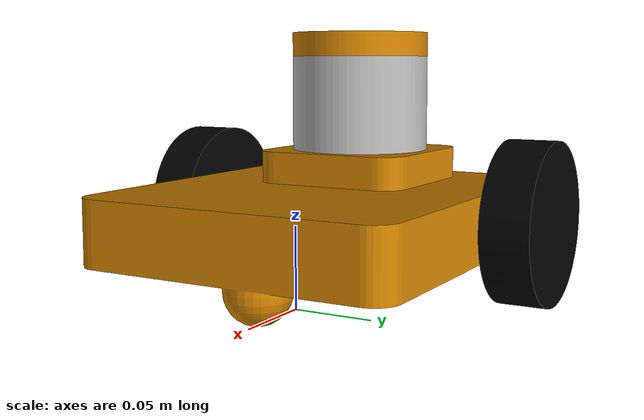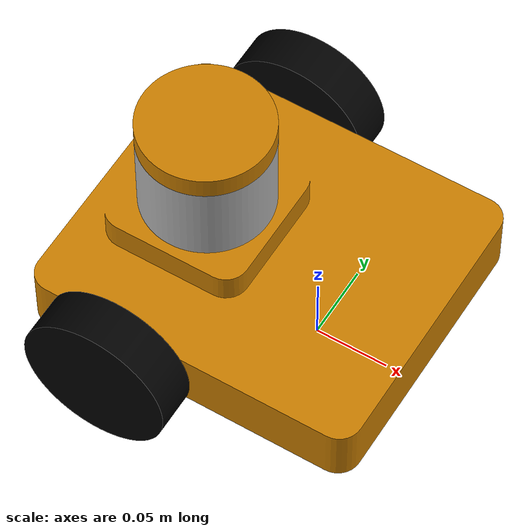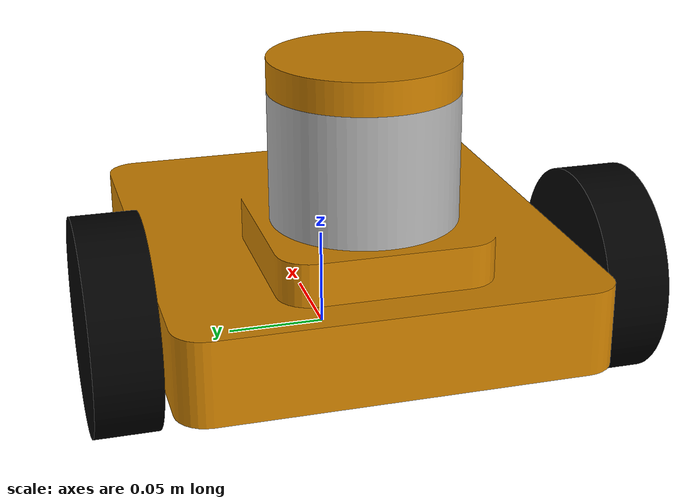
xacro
<?xml version="1.0" ?>
<robot name="simple_robot_v2" xmlns:xacro="http://www.ros.org/wiki/xacro">

<xacro:include filename="$(find simple_robot_v2_description)/urdf/materials.xacro" />
<xacro:include filename="$(find simple_robot_v2_description)/urdf/simple_robot_v2.trans" />
<xacro:include filename="$(find simple_robot_v2_description)/urdf/simple_robot_v2.gazebo" />

<link name="dummy">
</link>

<link name="base_link">
  <inertial>
    <origin xyz="-0.03822694000849843 -3.535369667010129e-17 0.05240112920272848" rpy="0 0 0"/>
    <mass value="2.1815300230136683"/>
    <inertia ixx="0.007073" iyy="0.009714" izz="0.015839" ixy="-0.0" iyz="-0.0" ixz="0.000339"/>
  </inertial>
  <visual>
    <origin xyz="0 0 0" rpy="0 0 0"/>
    <geometry>
      <mesh filename="file://$(find simple_robot_v2_description)/meshes/base_link.stl" scale="0.001 0.001 0.001"/>
    </geometry>
    <material name="yellow"/>
  </visual>
  <collision>
    <origin xyz="0 0 0" rpy="0 0 0"/>
    <geometry>
      <mesh filename="file://$(find simple_robot_v2_description)/meshes/base_link.stl" scale="0.001 0.001 0.001"/>
    </geometry>
  </collision>
</link>

<link name="left_wheel_1">
  <inertial>
    <origin xyz="1.3877787807814457e-17 0.015 -1.3877787807814457e-17" rpy="0 0 0"/>
    <mass value="0.21912608758788793"/>
    <inertia ixx="0.000153" iyy="0.000274" izz="0.000153" ixy="0.0" iyz="-0.0" ixz="0.0"/>
  </inertial>
  <visual>
    <origin xyz="0.08 -0.102 -0.05" rpy="0 0 0"/>
    <geometry>
      <mesh filename="file://$(find simple_robot_v2_description)/meshes/left_wheel_1.stl" scale="0.001 0.001 0.001"/>
    </geometry>
    <material name="black"/>
  </visual>
  <collision>
    <origin xyz="0.08 -0.102 -0.05" rpy="0 0 0"/>
    <geometry>
      <mesh filename="file://$(find simple_robot_v2_description)/meshes/left_wheel_1.stl" scale="0.001 0.001 0.001"/>
    </geometry>
  </collision>
</link>

<link name="right_wheel_1">
  <inertial>
    <origin xyz="0.0 -0.015000000000000013 6.938893903907228e-18" rpy="0 0 0"/>
    <mass value="0.21912608758788804"/>
    <inertia ixx="0.000153" iyy="0.000274" izz="0.000153" ixy="0.0" iyz="-0.0" ixz="-0.0"/>
  </inertial>
  <visual>
    <origin xyz="0.08 0.102 -0.05" rpy="0 0 0"/>
    <geometry>
      <mesh filename="file://$(find simple_robot_v2_description)/meshes/right_wheel_1.stl" scale="0.001 0.001 0.001"/>
    </geometry>
    <material name="black"/>
  </visual>
  <collision>
    <origin xyz="0.08 0.102 -0.05" rpy="0 0 0"/>
    <geometry>
      <mesh filename="file://$(find simple_robot_v2_description)/meshes/right_wheel_1.stl" scale="0.001 0.001 0.001"/>
    </geometry>
  </collision>
</link>

<link name="lidar_1">
  <inertial>
    <origin xyz="0.0 -6.374711652928641e-18 0.03" rpy="0 0 0"/>
    <mass value="2.799943667113741"/>
    <inertia ixx="0.002165" iyy="0.002165" izz="0.002649" ixy="-0.0" iyz="-0.0" ixz="-0.0"/>
  </inertial>
  <visual>
    <origin xyz="0.08 -0.0 -0.09" rpy="0 0 0"/>
    <geometry>
      <mesh filename="file://$(find simple_robot_v2_description)/meshes/lidar_1.stl" scale="0.001 0.001 0.001"/>
    </geometry>
    <material name="silver"/>
  </visual>
  <collision>
    <origin xyz="0.08 -0.0 -0.09" rpy="0 0 0"/>
    <geometry>
      <mesh filename="file://$(find simple_robot_v2_description)/meshes/lidar_1.stl" scale="0.001 0.001 0.001"/>
    </geometry>
  </collision>
</link>

<link name="lidar_cap_1">
  <inertial>
    <origin xyz="0.0 6.374711652928641e-18 0.007500000000000007" rpy="0 0 0"/>
    <mass value="0.24075948729958918"/>
    <inertia ixx="0.000118" iyy="0.000118" izz="0.000228" ixy="0.0" iyz="-0.0" ixz="-0.0"/>
  </inertial>
  <visual>
    <origin xyz="0.08 -0.0 -0.15" rpy="0 0 0"/>
    <geometry>
      <mesh filename="file://$(find simple_robot_v2_description)/meshes/lidar_cap_1.stl" scale="0.001 0.001 0.001"/>
    </geometry>
    <material name="yellow"/>
  </visual>
  <collision>
    <origin xyz="0.08 -0.0 -0.15" rpy="0 0 0"/>
    <geometry>
      <mesh filename="file://$(find simple_robot_v2_description)/meshes/lidar_cap_1.stl" scale="0.001 0.001 0.001"/>
    </geometry>
  </collision>
</link>

<joint name="dummy_joint" type="fixed">
  <parent link="dummy"/>
  <child link="base_link"/>
</joint>

<joint name="Revolute 9" type="continuous">
  <origin xyz="-0.08 0.102 0.05" rpy="0 0 0"/>
  <parent link="base_link"/>
  <child link="left_wheel_1"/>
  <axis xyz="0.0 1.0 0.0"/>
</joint>

<joint name="Revolute 10" type="continuous">
  <origin xyz="-0.08 -0.102 0.05" rpy="0 0 0"/>
  <parent link="base_link"/>
  <child link="right_wheel_1"/>
  <axis xyz="0.0 1.0 0.0"/>
</joint>

<joint name="Rigid 11" type="fixed">
  <origin xyz="-0.08 0.0 0.09" rpy="0 0 0"/>
  <parent link="base_link"/>
  <child link="lidar_1"/>
</joint>

<joint name="Rigid 12" type="fixed">
  <origin xyz="0.0 0.0 0.06" rpy="0 0 0"/>
  <parent link="lidar_1"/>
  <child link="lidar_cap_1"/>
</joint>

</robot>

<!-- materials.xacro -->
<robot name="simple_robot_v2" xmlns:xacro="http://www.ros.org/wiki/xacro" >

<material name="yellow">
  <color rgba="0.800 0.500 0.000 1.000"/>
</material>

<material name="black">
  <color rgba="0.000 0.000 0.000 1.000"/>
</material>

<material name="silver">
  <color rgba="0.700 0.700 0.700 1.000"/>
</material>

</robot>
